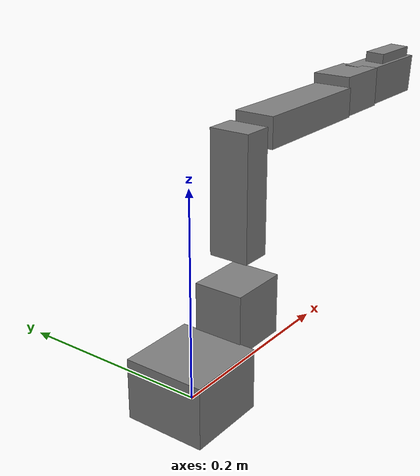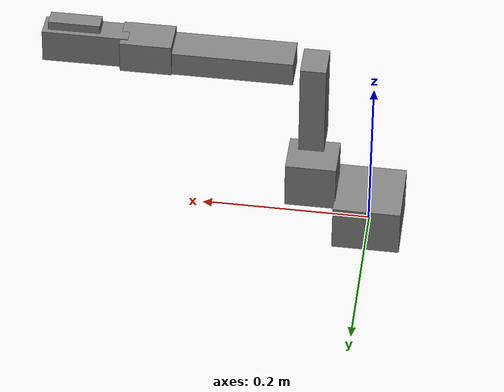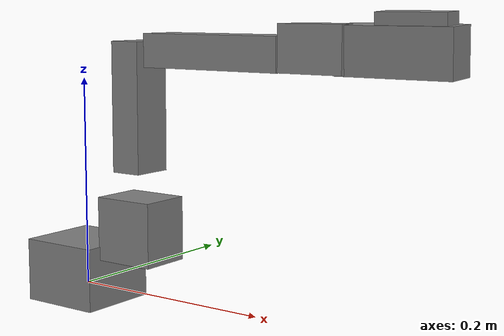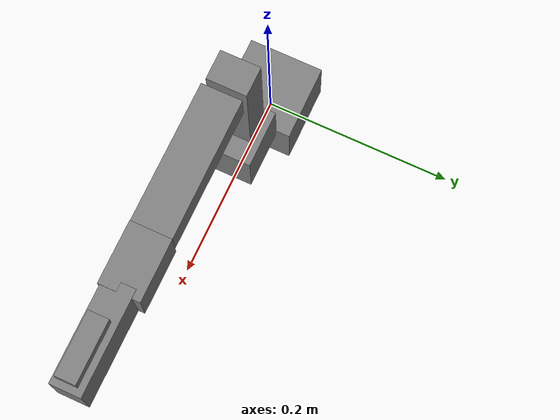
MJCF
<?xml version="1.0" ?>
<mujoco model="so101_ik">
  <compiler angle="radian" autolimits="true"/>

  <default>
    <default class="so101">
      <joint damping="1" frictionloss="0.1" armature="0.005"/>
    </default>
    <default class="sts3215">
      <joint damping="0.60" frictionloss="0.052" armature="0.028"/>
    </default>
  </default>

  <worldbody>
    <body name="base" pos="0 0 0" quat="1 0 0 0" childclass="so101">
      <inertial pos="0.0137179 -5.19711e-05 0.0334843" mass="0.147" fullinertia="0.000114686 0.000136117 0.000130364 -4.59787e-07 4.97151e-06 9.75275e-08"/>
      <geom type="box" size="0.04 0.04 0.03" pos="0 0 0.015"/>
      <site group="3" name="baseframe" pos="0 0 0" quat="1 0 0 0"/>

      <body name="shoulder" pos="0.0388353 0 0.0624" quat="0 0 -1 0">
        <joint axis="0 0 1" name="shoulder_pan" type="hinge" range="-1.91986 1.91986" class="sts3215"/>
        <inertial pos="-0.0307604 -1.7e-05 -0.0252713" mass="0.100006" fullinertia="8.3759e-05 8.10403e-05 2.39783e-05 7.55525e-08 -1.16342e-06 1.54663e-07"/>
        <geom type="box" size="0.03 0.025 0.03" pos="-0.03 0 0"/>

        <body name="upper_arm" pos="-0.0303992 -0.0182778 -0.0542" quat="1 -1 -1 -1">
          <joint axis="0 0 1" name="shoulder_lift" type="hinge" range="-1.7453293 1.7453293" class="sts3215"/>
          <inertial pos="-0.089847 -0.008382 0.018409" mass="0.103" fullinertia="4.08002e-05 0.000147318 0.000142487 -1.97819e-05 -4.03016e-08 8.97326e-09"/>
          <geom type="box" size="0.06 0.015 0.02" pos="-0.06 0 0.018"/>

          <body name="lower_arm" pos="-0.11257 -0.028 0" quat="1 0 0 1">
            <joint axis="0 0 1" name="elbow_flex" type="hinge" range="-1.69 1.69" class="sts3215"/>
            <inertial pos="-0.098070 0.0032438 0.018283" mass="0.104" fullinertia="2.87438e-05 0.000159844 0.00014529 7.41152e-06 1.26409e-06 -4.90188e-08"/>
            <geom type="box" size="0.07 0.015 0.02" pos="-0.065 0 0.018"/>

            <body name="wrist" pos="-0.1349 0.0052 0" quat="1 0 0 -1">
              <joint axis="0 0 1" name="wrist_flex" type="hinge" range="-1.658063 1.658063" class="sts3215"/>
              <inertial pos="-0.000103312 -0.0386143 0.0281156" mass="0.079" fullinertia="3.68263e-05 2.5391e-05 2.1e-05 1.7893e-08 -5.28128e-08 3.6412e-06"/>
              <geom type="box" size="0.02 0.03 0.02" pos="0 -0.03 0.02"/>

              <body name="gripper" pos="5.55112e-17 -0.0611 0.0181" quat="0.0172091 -0.0172091 0.706897 0.706897">
                <joint axis="0 0 1" name="wrist_roll" type="hinge" range="-2.7438473 2.7438473" class="sts3215"/>
                <inertial pos="0.000214 0.000245 -0.025187" mass="0.087" fullinertia="2.75087e-05 4.33657e-05 3.45059e-05 -3.35241e-07 -5.7352e-06 -5.17847e-08"/>
                <geom type="box" size="0.02 0.015 0.05" pos="0 0 -0.04"/>
                <site group="3" name="gripperframe" pos="0.012 -0.000218 -0.098127" quat="1 0 1 0"/>

                <body name="moving_jaw_so101_v1" pos="0.0202 0.0188 -0.0234" quat="1 1 0 0">
                  <joint axis="0 0 1" name="gripper" type="hinge" range="-0.174533 1.7453292" class="sts3215"/>
                  <inertial pos="-0.001575 -0.0300244 0.0192755" mass="0.012" fullinertia="6.61427e-06 1.89032e-06 5.28738e-06 -3.19807e-07 -5.90717e-09 -1.09945e-07"/>
                  <geom type="box" size="0.01 0.03 0.01" pos="0 -0.03 0.02"/>
                </body>
              </body>
            </body>
          </body>
        </body>
      </body>
    </body>
  </worldbody>
</mujoco>
